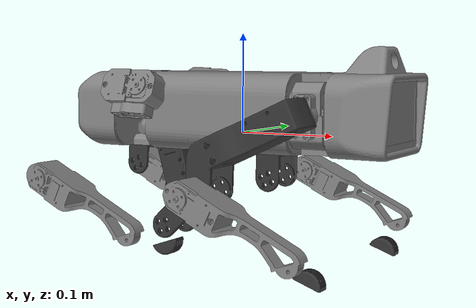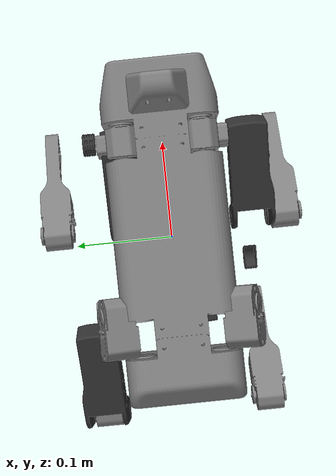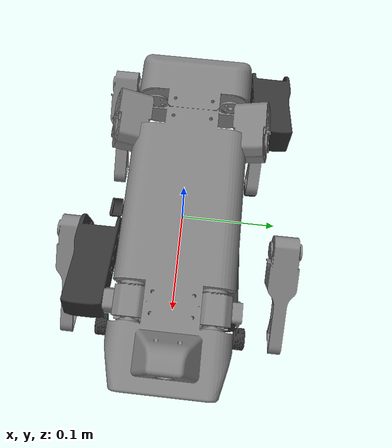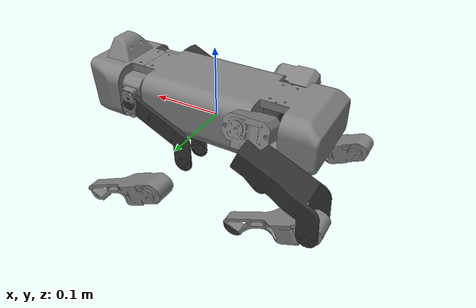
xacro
<?xml version="1.0"?>
<robot xmlns:xacro="http://www.ros.org/wiki/xacro" name="dog_robot">

  <xacro:include filename="$(find dog_robot_description)/urdf/materials.xacro"/>
  <xacro:include filename="$(find dog_robot_description)/urdf/leg.xacro"/>

  <link name="base_link">
    <visual>
      <origin xyz="0 0 0" rpy="0 0 0"/>
      <geometry>
        <mesh filename="file://$(find dog_robot_description)/meshes/visual_dh/base_link.stl"/>
      </geometry>
      <material name="grey"/>
    </visual>
    <collision>
      <origin xyz="0 0 0" rpy="0 0 0"/>
      <geometry>
        <mesh filename="file://$(find dog_robot_description)/meshes/collision/base_link.stl"/>
      </geometry>
    </collision>
  </link>

  <xacro:leg prefix="FL"
             base_to_hip_xyz="0.12440000 0.04000000 0.03510000"
             base_to_hip_rpy="1.57079633 0.47898407 1.57079633"
             hip_to_thigh_xyz="0.02857903 -0.00000000 -0.02520000"
             hip_to_thigh_rpy="-1.57079633 0.86153654 -1.09167192"
             thigh_to_knee_xyz="0.10991717 0.00000000 0.04082200"
             thigh_to_knee_rpy="0.00000000 -0.00000000 -1.91270717"
             knee_to_foot_xyz="0.12491862 0.00000000 -0.02330900"
             knee_to_foot_rpy="1.57079633 -0.00000000 -0.51962570"/>

  <xacro:leg prefix="FR"
             base_to_hip_xyz="0.12440000 -0.04000000 0.03510000"
             base_to_hip_rpy="-1.57079633 0.45269343 -1.57079633"
             hip_to_thigh_xyz="0.02857866 0.00000000 -0.02520000"
             hip_to_thigh_rpy="-1.57079633 0.86322489 1.11810290"
             thigh_to_knee_xyz="0.10920166 0.00000000 -0.04270000"
             thigh_to_knee_rpy="0.00000000 -0.00000000 -1.90383610"
             knee_to_foot_xyz="0.12519452 0.00000000 0.02552600"
             knee_to_foot_rpy="1.57079633 -0.00000000 -0.53018512"/>

  <xacro:leg prefix="BL"
             base_to_hip_xyz="-0.07480000 0.04000000 0.03510000"
             base_to_hip_rpy="1.57079633 0.47912441 1.57079633"
             hip_to_thigh_xyz="0.02857903 -0.00000000 -0.02520000"
             hip_to_thigh_rpy="-1.57079633 0.86153654 -1.09167192"
             thigh_to_knee_xyz="0.10991717 0.00000000 0.04082200"
             thigh_to_knee_rpy="0.00000000 -0.00000000 -1.91270717"
             knee_to_foot_xyz="0.12491862 0.00000000 -0.02330900"
             knee_to_foot_rpy="1.57079633 -0.00000000 -0.51962570"/>

  <xacro:leg prefix="BR"
             base_to_hip_xyz="-0.07480000 -0.04000000 0.03510000"
             base_to_hip_rpy="-1.57079633 0.45269343 -1.57079633"
             hip_to_thigh_xyz="0.02857866 0.00000000 -0.02520000"
             hip_to_thigh_rpy="-1.57079633 0.86322489 1.11810290"
             thigh_to_knee_xyz="0.10920166 0.00000000 -0.04270000"
             thigh_to_knee_rpy="0.00000000 -0.00000000 -1.90383610"
             knee_to_foot_xyz="0.12519452 0.00000000 0.02552600"
             knee_to_foot_rpy="1.57079633 -0.00000000 -0.53018512"/>

</robot>

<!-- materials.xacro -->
<robot xmlns:xacro="http://www.ros.org/wiki/xacro" name="dog_robot_materials">
  <material name="grey"><color rgba="0.5 0.5 0.5 1.0"/></material>
  <material name="dark_grey"><color rgba="0.2 0.2 0.2 1.0"/></material>
  <material name="orange"><color rgba="1.0 0.5 0.0 1.0"/></material>
</robot>

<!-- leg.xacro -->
<robot xmlns:xacro="http://www.ros.org/wiki/xacro" name="dog_robot_leg">

  <xacro:macro name="leg" params="prefix
                                  base_to_hip_xyz base_to_hip_rpy
                                  hip_to_thigh_xyz hip_to_thigh_rpy
                                  thigh_to_knee_xyz thigh_to_knee_rpy
                                  knee_to_foot_xyz knee_to_foot_rpy
                                  foot_sphere_xyz:='0 0 0'">

    <link name="${prefix}_hip_link">
      <visual>
        <origin xyz="0 0 0" rpy="0 0 0"/>
        <geometry>
          <mesh filename="package://dog_robot_description/meshes/visual_dh/${prefix}_hip_link.stl"/>
        </geometry>
        <material name="grey"/>
      </visual>
      <collision>
        <origin xyz="0 0 0" rpy="0 0 0"/>
        <geometry><box size="0.03 0.03 0.03"/></geometry>
      </collision>
    </link>

    <joint name="${prefix}_hip_roll" type="revolute">
      <parent link="base_link"/>
      <child link="${prefix}_hip_link"/>
      <origin xyz="${base_to_hip_xyz}" rpy="${base_to_hip_rpy}"/>
      <axis xyz="0 0 1"/>
      <limit lower="-0.785" upper="0.785" effort="10.0" velocity="8.0"/>
      <dynamics damping="0.5" friction="0.0"/>
    </joint>

    <link name="${prefix}_thigh_link">
      <visual>
        <origin xyz="0 0 0" rpy="0 0 0"/>
        <geometry>
          <mesh filename="package://dog_robot_description/meshes/visual_dh/${prefix}_thigh_link.stl"/>
        </geometry>
        <material name="dark_grey"/>
      </visual>
      <collision>
        <origin xyz="0 0 0" rpy="0 0 0"/>
        <geometry><box size="0.02 0.02 0.08"/></geometry>
      </collision>
    </link>

    <joint name="${prefix}_thigh_pitch" type="revolute">
      <parent link="${prefix}_hip_link"/>
      <child link="${prefix}_thigh_link"/>
      <origin xyz="${hip_to_thigh_xyz}" rpy="${hip_to_thigh_rpy}"/>
      <axis xyz="0 0 1"/>
      <limit lower="-1.571" upper="1.571" effort="10.0" velocity="8.0"/>
      <dynamics damping="0.5" friction="0.0"/>
    </joint>

    <link name="${prefix}_shank_link">
      <visual>
        <origin xyz="0 0 0" rpy="0 0 0"/>
        <geometry>
          <mesh filename="package://dog_robot_description/meshes/visual_dh/${prefix}_shank_link.stl"/>
        </geometry>
        <material name="grey"/>
      </visual>
      <collision>
        <origin xyz="0 0 0" rpy="0 0 0"/>
        <geometry><box size="0.015 0.015 0.10"/></geometry>
      </collision>
    </link>

    <joint name="${prefix}_knee_pitch" type="revolute">
      <parent link="${prefix}_thigh_link"/>
      <child link="${prefix}_shank_link"/>
      <origin xyz="${thigh_to_knee_xyz}" rpy="${thigh_to_knee_rpy}"/>
      <axis xyz="0 0 1"/>
      <limit lower="-2.617" upper="0.5" effort="10.0" velocity="8.0"/>
      <dynamics damping="0.5" friction="0.0"/>
    </joint>

    <link name="${prefix}_foot_link">
      <visual>
        <origin xyz="0 0 0" rpy="0 0 0"/>
        <geometry>
          <mesh filename="package://dog_robot_description/meshes/visual_dh/${prefix}_foot_link.stl"/>
        </geometry>
        <material name="dark_grey"/>
      </visual>
      <collision>
        <origin xyz="${foot_sphere_xyz}" rpy="0 0 0"/>
        <geometry><sphere radius="0.018"/></geometry>
      </collision>
    </link>

    <joint name="${prefix}_foot_fixed" type="fixed">
      <parent link="${prefix}_shank_link"/>
      <child link="${prefix}_foot_link"/>
      <origin xyz="${knee_to_foot_xyz}" rpy="${knee_to_foot_rpy}"/>
    </joint>

  </xacro:macro>

</robot>
